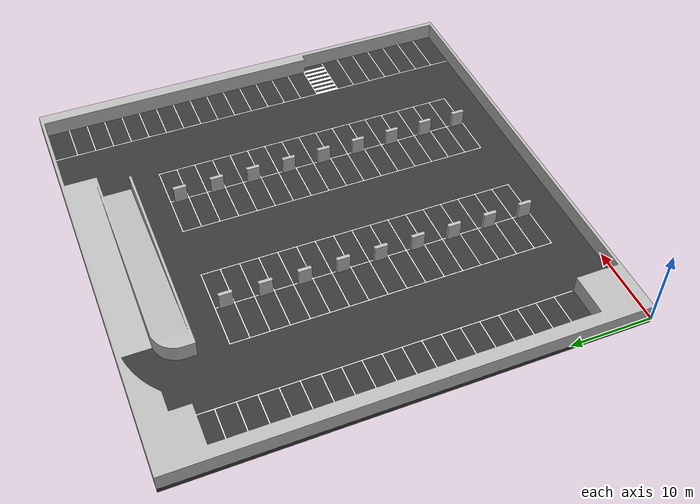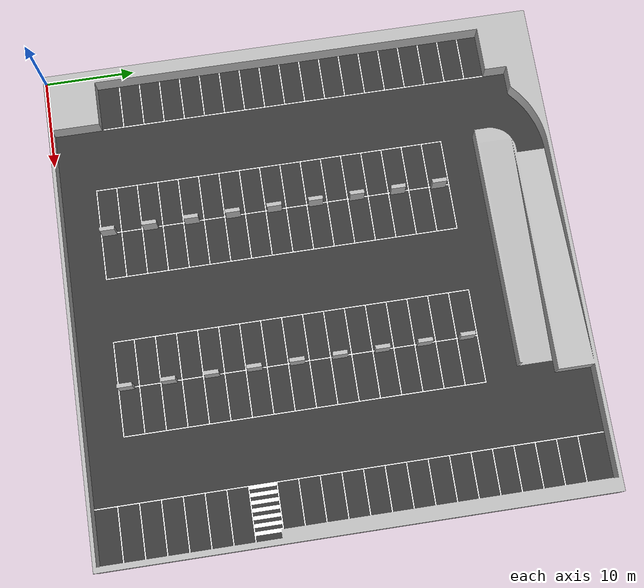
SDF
<?xml version='1.0'?>
<sdf version='1.5'>
  <model name="Fasanengarten_Parking_Garage">
    <static>true</static>
    <link name="body">
      <pose>0.0 0.0 0.0  0.0 0.0 0.0</pose>
      <collision name="body_collision">
        <geometry>
          <mesh><scale>1.0 1.0 1.0</scale><uri>model://Fasanengarten_Parking_Garage/meshes/tg_fasanengarten_7_1.dae</uri></mesh>
        </geometry>
      </collision>
      <visual name="visual_collision">
        <geometry>
          <mesh><scale>1.0 1.0 1.0</scale><uri>model://Fasanengarten_Parking_Garage/meshes/tg_fasanengarten_7_1.dae</uri></mesh>
        </geometry>
      </visual>
    </link>

  </model>
</sdf>
